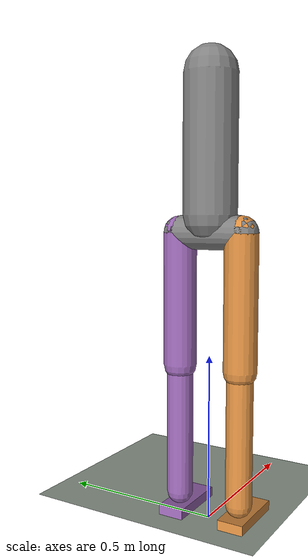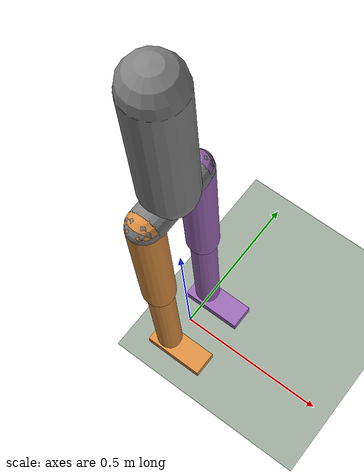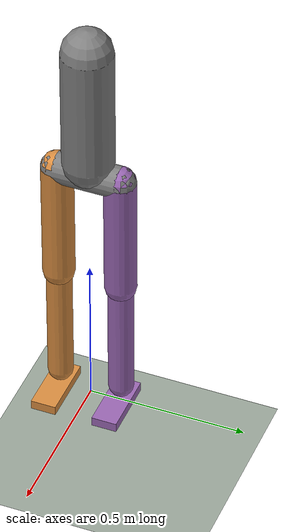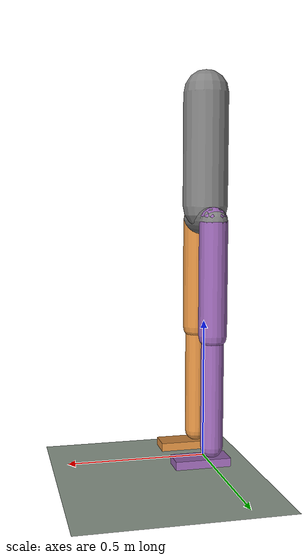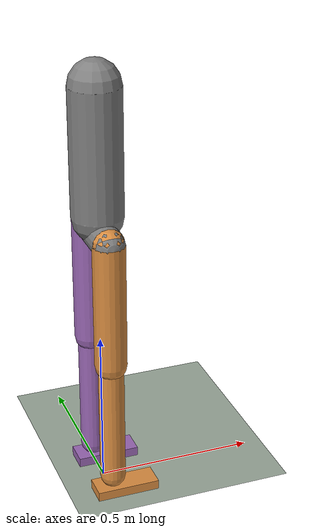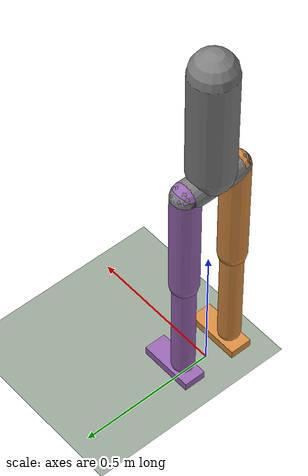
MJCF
<mujoco model="zancudo3d">
  <compiler angle="radian"/>

  <option integrator="implicitfast"/>

  <size nkey="1"/>

  <visual>
    <headlight ambient="0.4 0.4 0.4" diffuse="0.6 0.6 0.6"/>
  </visual>

  <default>
    <joint armature="0.01" damping="1"/>
  </default>

  <asset>
    <texture type="skybox" colorspace="auto" name="cielo" builtin="gradient" rgb1="0.5 0.6 0.7" rgb2="0.1 0.1 0.15" width="200" height="1200"/>
    <texture type="2d" colorspace="auto" name="cuadros" builtin="checker" rgb1="0.75 0.8 0.75" rgb2="0.45 0.5 0.45" width="300" height="300"/>
    <material name="suelo" texture="cuadros" texrepeat="10 10"/>
  </asset>

  <worldbody>
    <geom name="suelo" size="20 20 0.1" type="plane" material="suelo"/>
    <light pos="0 0 3" type="directional"/>
    <body name="torso" pos="0 0 0.865">
      <joint name="raiz" type="free" armature="0" damping="0"/>
      <geom name="torso" size="0.08 0.2" pos="0 0 0.25" quat="0 1 0 0" type="capsule" mass="12"/>
      <geom name="pelvis" size="0.05 0.1" quat="0.707107 0.707107 0 0" type="capsule" contype="0" conaffinity="0" mass="0"/>
      <site name="imu" pos="0 0 0.3"/>
      <camera name="frente" quat="0.5 0.5 0.5 0.5" pos="3 0 0.2" mode="trackcom"/>
      <camera name="lado" quat="0.707107 0.707107 0 0" pos="0 -3 0.2" mode="trackcom"/>
      <body name="muslo_d" pos="0 -0.1 0">
        <joint name="cadera_giro_d" range="-0.5 0.5"/>
        <joint name="cadera_lado_d" range="-0.5 0.5" axis="1 0 0"/>
        <joint name="cadera_d" range="-1.57 1.57" axis="0 -1 0"/>
        <geom size="0.05 0.2" pos="0 0 -0.2" type="capsule" rgba="0.85 0.55 0.25 1" mass="3"/>
        <body name="pierna_d" pos="0 0 -0.4">
          <joint name="rodilla_d" range="-2.6 0" axis="0 -1 0"/>
          <geom size="0.04 0.2" pos="0 0 -0.2" type="capsule" rgba="0.85 0.55 0.25 1" mass="2"/>
          <body name="pie_d" pos="0 0 -0.4">
            <joint name="tobillo_d" range="-0.78 0.78" axis="0 -1 0"/>
            <joint name="tobillo_lado_d" range="-0.4 0.4" axis="1 0 0"/>
            <geom name="pie_d" size="0.1 0.04 0.015" pos="0.04 0 -0.05" type="box" rgba="0.85 0.55 0.25 1" mass="0.8"/>
            <site name="planta_d" size="0.11 0.05 0.03" pos="0.04 0 -0.065" type="box" rgba="0 0 0 0"/>
          </body>
        </body>
      </body>
      <body name="muslo_i" pos="0 0.1 0">
        <joint name="cadera_giro_i" range="-0.5 0.5"/>
        <joint name="cadera_lado_i" range="-0.5 0.5" axis="1 0 0"/>
        <joint name="cadera_i" range="-1.57 1.57" axis="0 -1 0"/>
        <geom size="0.05 0.2" pos="0 0 -0.2" type="capsule" rgba="0.6 0.4 0.7 1" mass="3"/>
        <body name="pierna_i" pos="0 0 -0.4">
          <joint name="rodilla_i" range="-2.6 0" axis="0 -1 0"/>
          <geom size="0.04 0.2" pos="0 0 -0.2" type="capsule" rgba="0.6 0.4 0.7 1" mass="2"/>
          <body name="pie_i" pos="0 0 -0.4">
            <joint name="tobillo_i" range="-0.78 0.78" axis="0 -1 0"/>
            <joint name="tobillo_lado_i" range="-0.4 0.4" axis="1 0 0"/>
            <geom name="pie_i" size="0.1 0.04 0.015" pos="0.04 0 -0.05" type="box" rgba="0.6 0.4 0.7 1" mass="0.8"/>
            <site name="planta_i" size="0.11 0.05 0.03" pos="0.04 0 -0.065" type="box" rgba="0 0 0 0"/>
          </body>
        </body>
      </body>
    </body>
  </worldbody>

  <actuator>
    <general name="m_cadera_giro_d" joint="cadera_giro_d" ctrlrange="-0.5 0.5" forcerange="-150 150" biastype="affine" gainprm="3000" biasprm="0 -3000 -90"/>
    <general name="m_cadera_lado_d" joint="cadera_lado_d" ctrlrange="-0.5 0.5" forcerange="-150 150" biastype="affine" gainprm="3000" biasprm="0 -3000 -90"/>
    <general name="m_cadera_d" joint="cadera_d" ctrlrange="-1.57 1.57" forcerange="-150 150" biastype="affine" gainprm="3000" biasprm="0 -3000 -90"/>
    <general name="m_rodilla_d" joint="rodilla_d" ctrlrange="-2.6 0" forcerange="-150 150" biastype="affine" gainprm="3000" biasprm="0 -3000 -90"/>
    <general name="m_tobillo_d" joint="tobillo_d" ctrlrange="-0.78 0.78" forcerange="-150 150" biastype="affine" gainprm="3000" biasprm="0 -3000 -90"/>
    <general name="m_tobillo_lado_d" joint="tobillo_lado_d" ctrlrange="-0.4 0.4" forcerange="-150 150" biastype="affine" gainprm="3000" biasprm="0 -3000 -90"/>
    <general name="m_cadera_giro_i" joint="cadera_giro_i" ctrlrange="-0.5 0.5" forcerange="-150 150" biastype="affine" gainprm="3000" biasprm="0 -3000 -90"/>
    <general name="m_cadera_lado_i" joint="cadera_lado_i" ctrlrange="-0.5 0.5" forcerange="-150 150" biastype="affine" gainprm="3000" biasprm="0 -3000 -90"/>
    <general name="m_cadera_i" joint="cadera_i" ctrlrange="-1.57 1.57" forcerange="-150 150" biastype="affine" gainprm="3000" biasprm="0 -3000 -90"/>
    <general name="m_rodilla_i" joint="rodilla_i" ctrlrange="-2.6 0" forcerange="-150 150" biastype="affine" gainprm="3000" biasprm="0 -3000 -90"/>
    <general name="m_tobillo_i" joint="tobillo_i" ctrlrange="-0.78 0.78" forcerange="-150 150" biastype="affine" gainprm="3000" biasprm="0 -3000 -90"/>
    <general name="m_tobillo_lado_i" joint="tobillo_lado_i" ctrlrange="-0.4 0.4" forcerange="-150 150" biastype="affine" gainprm="3000" biasprm="0 -3000 -90"/>
  </actuator>

  <sensor>
    <touch site="planta_d" name="tacto_d"/>
    <touch site="planta_i" name="tacto_i"/>
    <gyro site="imu" name="giroscopo"/>
    <accelerometer site="imu" name="acelerometro"/>
    <framequat objtype="site" objname="imu" name="orientacion"/>
  </sensor>

  <keyframe>
    <key name="agachado" qpos="0 0 0.767066 1 0 0 0 0 0 0.5 -1 0.5 0 0 0 0.5 -1 0.5 0" ctrl="0 0 0.5 -1 0.5 0 0 0 0.5 -1 0.5 0"/>
  </keyframe>
</mujoco>
